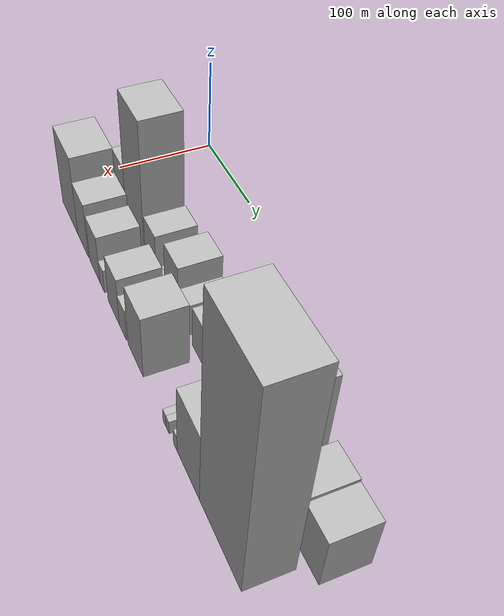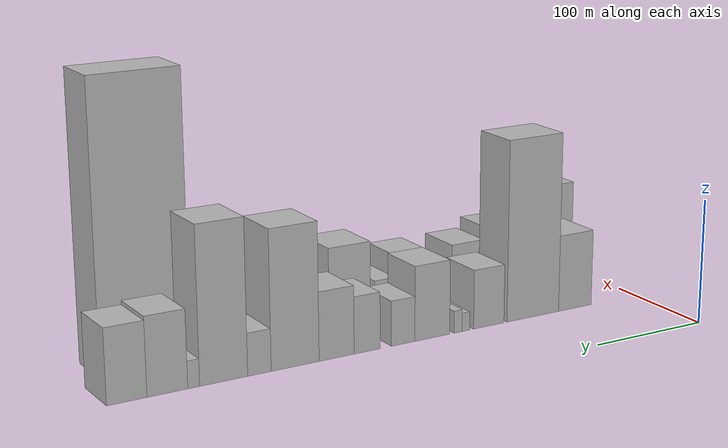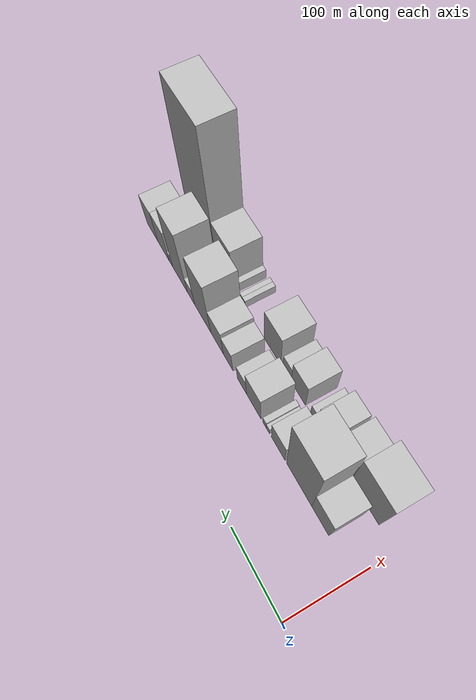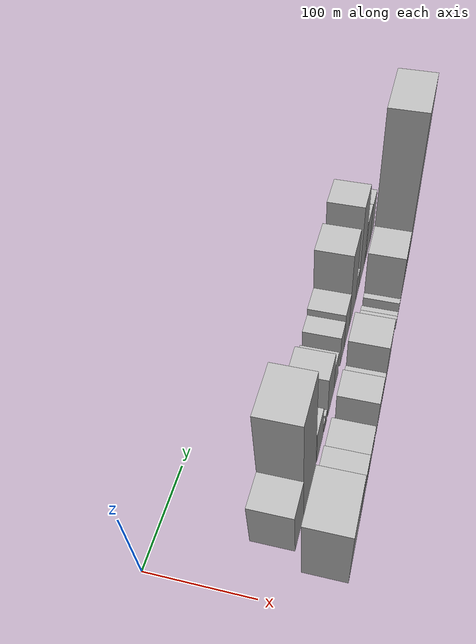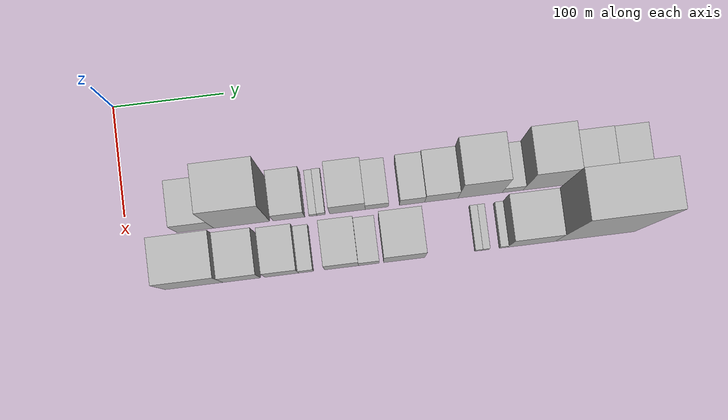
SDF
<sdf version="1.6">
 <world name="default">
  <model name="building_15">
   <static>1</static>
   <pose>100.0000 61.6546 0 0.000000 0.000000 0.000000</pose>
   <link name="link">
    <pose>0 0 31.50 0 0 0</pose>
    <collision name="collision"><geometry><box><size>40.0000 32.7342 63.0000</size></box></geometry></collision>
    <visual name="visual">
     <cast_shadows>0</cast_shadows>
     <geometry><box><size>40.0000 32.7342 63.0000</size></box></geometry>
     <material>
      <script>
       <uri>model://HANNAS_wall/materials/scripts</uri>
       <uri>model://HANNAS_wall/materials/textures</uri>
       <name>vrc/HANNAS_wall</name>
      </script>
     </material>
    </visual>
   </link>
  </model>
  <model name="building_16">
   <static>1</static>
   <pose>100.0000 103.1810 0 0.000000 0.000000 0.000000</pose>
   <link name="link">
    <pose>0 0 73.50 0 0 0</pose>
    <collision name="collision"><geometry><box><size>40.0000 50.3187 147.0000</size></box></geometry></collision>
    <visual name="visual">
     <cast_shadows>0</cast_shadows>
     <geometry><box><size>40.0000 50.3187 147.0000</size></box></geometry>
     <material>
      <script>
       <uri>model://HANNAS_wall/materials/scripts</uri>
       <uri>model://HANNAS_wall/materials/textures</uri>
       <name>vrc/HANNAS_wall</name>
      </script>
     </material>
    </visual>
   </link>
  </model>
  <model name="building_17">
   <static>1</static>
   <pose>100.0000 145.6034 0 0.000000 0.000000 0.000000</pose>
   <link name="link">
    <pose>0 0 24.00 0 0 0</pose>
    <collision name="collision"><geometry><box><size>40.0000 28.5263 48.0000</size></box></geometry></collision>
    <visual name="visual">
     <cast_shadows>0</cast_shadows>
     <geometry><box><size>40.0000 28.5263 48.0000</size></box></geometry>
     <material>
      <script>
       <uri>model://HANNAS_wall/materials/scripts</uri>
       <uri>model://HANNAS_wall/materials/textures</uri>
       <name>vrc/HANNAS_wall</name>
      </script>
     </material>
    </visual>
   </link>
  </model>
  <model name="building_18">
   <static>1</static>
   <pose>100.0000 167.2527 0 0.000000 0.000000 0.000000</pose>
   <link name="link">
    <pose>0 0 7.50 0 0 0</pose>
    <collision name="collision"><geometry><box><size>40.0000 6.7721 15.0000</size></box></geometry></collision>
    <visual name="visual">
     <cast_shadows>0</cast_shadows>
     <geometry><box><size>40.0000 6.7721 15.0000</size></box></geometry>
     <material>
      <script>
       <uri>model://HANNAS_wall/materials/scripts</uri>
       <uri>model://HANNAS_wall/materials/textures</uri>
       <name>vrc/HANNAS_wall</name>
      </script>
     </material>
    </visual>
   </link>
  </model>
  <model name="building_19">
   <static>1</static>
   <pose>100.0000 174.4113 0 0.000000 0.000000 0.000000</pose>
   <link name="link">
    <pose>0 0 9.00 0 0 0</pose>
    <collision name="collision"><geometry><box><size>40.0000 7.5451 18.0000</size></box></geometry></collision>
    <visual name="visual">
     <cast_shadows>0</cast_shadows>
     <geometry><box><size>40.0000 7.5451 18.0000</size></box></geometry>
     <material>
      <script>
       <uri>model://HANNAS_wall/materials/scripts</uri>
       <uri>model://HANNAS_wall/materials/textures</uri>
       <name>vrc/HANNAS_wall</name>
      </script>
     </material>
    </visual>
   </link>
  </model>
  <model name="building_20">
   <static>1</static>
   <pose>100.0000 198.0526 0 0.000000 0.000000 0.000000</pose>
   <link name="link">
    <pose>0 0 30.00 0 0 0</pose>
    <collision name="collision"><geometry><box><size>40.0000 31.7376 60.0000</size></box></geometry></collision>
    <visual name="visual">
     <cast_shadows>0</cast_shadows>
     <geometry><box><size>40.0000 31.7376 60.0000</size></box></geometry>
     <material>
      <script>
       <uri>model://HANNAS_wall/materials/scripts</uri>
       <uri>model://HANNAS_wall/materials/textures</uri>
       <name>vrc/HANNAS_wall</name>
      </script>
     </material>
    </visual>
   </link>
  </model>
  <model name="building_21">
   <static>1</static>
   <pose>100.0000 224.3703 0 0.000000 0.000000 0.000000</pose>
   <link name="link">
    <pose>0 0 18.00 0 0 0</pose>
    <collision name="collision"><geometry><box><size>40.0000 20.8978 36.0000</size></box></geometry></collision>
    <visual name="visual">
     <cast_shadows>0</cast_shadows>
     <geometry><box><size>40.0000 20.8978 36.0000</size></box></geometry>
     <material>
      <script>
       <uri>model://HANNAS_wall/materials/scripts</uri>
       <uri>model://HANNAS_wall/materials/textures</uri>
       <name>vrc/HANNAS_wall</name>
      </script>
     </material>
    </visual>
   </link>
  </model>
  <model name="building_22">
   <static>1</static>
   <pose>100.0000 256.1415 0 0.000000 0.000000 0.000000</pose>
   <link name="link">
    <pose>0 0 22.50 0 0 0</pose>
    <collision name="collision"><geometry><box><size>40.0000 22.6446 45.0000</size></box></geometry></collision>
    <visual name="visual">
     <cast_shadows>0</cast_shadows>
     <geometry><box><size>40.0000 22.6446 45.0000</size></box></geometry>
     <material>
      <script>
       <uri>model://HANNAS_wall/materials/scripts</uri>
       <uri>model://HANNAS_wall/materials/textures</uri>
       <name>vrc/HANNAS_wall</name>
      </script>
     </material>
    </visual>
   </link>
  </model>
  <model name="building_23">
   <static>1</static>
   <pose>100.0000 282.3824 0 0.000000 0.000000 0.000000</pose>
   <link name="link">
    <pose>0 0 27.00 0 0 0</pose>
    <collision name="collision"><geometry><box><size>40.0000 29.8373 54.0000</size></box></geometry></collision>
    <visual name="visual">
     <cast_shadows>0</cast_shadows>
     <geometry><box><size>40.0000 29.8373 54.0000</size></box></geometry>
     <material>
      <script>
       <uri>model://HANNAS_wall/materials/scripts</uri>
       <uri>model://HANNAS_wall/materials/textures</uri>
       <name>vrc/HANNAS_wall</name>
      </script>
     </material>
    </visual>
   </link>
  </model>
  <model name="building_24">
   <static>1</static>
   <pose>100.0000 317.1750 0 0.000000 0.000000 0.000000</pose>
   <link name="link">
    <pose>0 0 54.00 0 0 0</pose>
    <collision name="collision"><geometry><box><size>40.0000 39.7479 108.0000</size></box></geometry></collision>
    <visual name="visual">
     <cast_shadows>0</cast_shadows>
     <geometry><box><size>40.0000 39.7479 108.0000</size></box></geometry>
     <material>
      <script>
       <uri>model://HANNAS_wall/materials/scripts</uri>
       <uri>model://HANNAS_wall/materials/textures</uri>
       <name>vrc/HANNAS_wall</name>
      </script>
     </material>
    </visual>
   </link>
  </model>
  <model name="building_25">
   <static>1</static>
   <pose>100.0000 346.6043 0 0.000000 0.000000 0.000000</pose>
   <link name="link">
    <pose>0 0 16.50 0 0 0</pose>
    <collision name="collision"><geometry><box><size>40.0000 19.1107 33.0000</size></box></geometry></collision>
    <visual name="visual">
     <cast_shadows>0</cast_shadows>
     <geometry><box><size>40.0000 19.1107 33.0000</size></box></geometry>
     <material>
      <script>
       <uri>model://HANNAS_wall/materials/scripts</uri>
       <uri>model://HANNAS_wall/materials/textures</uri>
       <name>vrc/HANNAS_wall</name>
      </script>
     </material>
    </visual>
   </link>
  </model>
  <model name="building_26">
   <static>1</static>
   <pose>100.0000 375.1776 0 0.000000 0.000000 0.000000</pose>
   <link name="link">
    <pose>0 0 60.00 0 0 0</pose>
    <collision name="collision"><geometry><box><size>40.0000 38.0360 120.0000</size></box></geometry></collision>
    <visual name="visual">
     <cast_shadows>0</cast_shadows>
     <geometry><box><size>40.0000 38.0360 120.0000</size></box></geometry>
     <material>
      <script>
       <uri>model://HANNAS_wall/materials/scripts</uri>
       <uri>model://HANNAS_wall/materials/textures</uri>
       <name>vrc/HANNAS_wall</name>
      </script>
     </material>
    </visual>
   </link>
  </model>
  <model name="building_27">
   <static>1</static>
   <pose>100.0000 398.8206 0 0.000000 0.000000 0.000000</pose>
   <link name="link">
    <pose>0 0 10.50 0 0 0</pose>
    <collision name="collision"><geometry><box><size>40.0000 9.2500 21.0000</size></box></geometry></collision>
    <visual name="visual">
     <cast_shadows>0</cast_shadows>
     <geometry><box><size>40.0000 9.2500 21.0000</size></box></geometry>
     <material>
      <script>
       <uri>model://HANNAS_wall/materials/scripts</uri>
       <uri>model://HANNAS_wall/materials/textures</uri>
       <name>vrc/HANNAS_wall</name>
      </script>
     </material>
    </visual>
   </link>
  </model>
  <model name="building_28">
   <static>1</static>
   <pose>100.0000 419.0228 0 0.000000 0.000000 0.000000</pose>
   <link name="link">
    <pose>0 0 30.00 0 0 0</pose>
    <collision name="collision"><geometry><box><size>40.0000 31.1543 60.0000</size></box></geometry></collision>
    <visual name="visual">
     <cast_shadows>0</cast_shadows>
     <geometry><box><size>40.0000 31.1543 60.0000</size></box></geometry>
     <material>
      <script>
       <uri>model://HANNAS_wall/materials/scripts</uri>
       <uri>model://HANNAS_wall/materials/textures</uri>
       <name>vrc/HANNAS_wall</name>
      </script>
     </material>
    </visual>
   </link>
  </model>
  <model name="building_29">
   <static>1</static>
   <pose>100.0000 449.6907 0 0.000000 0.000000 0.000000</pose>
   <link name="link">
    <pose>0 0 28.50 0 0 0</pose>
    <collision name="collision"><geometry><box><size>40.0000 30.1815 57.0000</size></box></geometry></collision>
    <visual name="visual">
     <cast_shadows>0</cast_shadows>
     <geometry><box><size>40.0000 30.1815 57.0000</size></box></geometry>
     <material>
      <script>
       <uri>model://HANNAS_wall/materials/scripts</uri>
       <uri>model://HANNAS_wall/materials/textures</uri>
       <name>vrc/HANNAS_wall</name>
      </script>
     </material>
    </visual>
   </link>
  </model>
  <model name="building_40">
   <static>1</static>
   <pose>149.0000 55.1138 0 0.000000 0.000000 0.000000</pose>
   <link name="link">
    <pose>0 0 45.00 0 0 0</pose>
    <collision name="collision"><geometry><box><size>40.0000 51.8248 90.0000</size></box></geometry></collision>
    <visual name="visual">
     <cast_shadows>0</cast_shadows>
     <geometry><box><size>40.0000 51.8248 90.0000</size></box></geometry>
     <material>
      <script>
       <uri>model://HANNAS_wall/materials/scripts</uri>
       <uri>model://HANNAS_wall/materials/textures</uri>
       <name>vrc/HANNAS_wall</name>
      </script>
     </material>
    </visual>
   </link>
  </model>
  <model name="building_41">
   <static>1</static>
   <pose>149.0000 97.7562 0 0.000000 0.000000 0.000000</pose>
   <link name="link">
    <pose>0 0 31.50 0 0 0</pose>
    <collision name="collision"><geometry><box><size>40.0000 33.4600 63.0000</size></box></geometry></collision>
    <visual name="visual">
     <cast_shadows>0</cast_shadows>
     <geometry><box><size>40.0000 33.4600 63.0000</size></box></geometry>
     <material>
      <script>
       <uri>model://HANNAS_wall/materials/scripts</uri>
       <uri>model://HANNAS_wall/materials/textures</uri>
       <name>vrc/HANNAS_wall</name>
      </script>
     </material>
    </visual>
   </link>
  </model>
  <model name="building_42">
   <static>1</static>
   <pose>149.0000 133.5364 0 0.000000 0.000000 0.000000</pose>
   <link name="link">
    <pose>0 0 27.00 0 0 0</pose>
    <collision name="collision"><geometry><box><size>40.0000 30.1005 54.0000</size></box></geometry></collision>
    <visual name="visual">
     <cast_shadows>0</cast_shadows>
     <geometry><box><size>40.0000 30.1005 54.0000</size></box></geometry>
     <material>
      <script>
       <uri>model://HANNAS_wall/materials/scripts</uri>
       <uri>model://HANNAS_wall/materials/textures</uri>
       <name>vrc/HANNAS_wall</name>
      </script>
     </material>
    </visual>
   </link>
  </model>
  <model name="building_43">
   <static>1</static>
   <pose>149.0000 155.2180 0 0.000000 0.000000 0.000000</pose>
   <link name="link">
    <pose>0 0 13.50 0 0 0</pose>
    <collision name="collision"><geometry><box><size>40.0000 13.2626 27.0000</size></box></geometry></collision>
    <visual name="visual">
     <cast_shadows>0</cast_shadows>
     <geometry><box><size>40.0000 13.2626 27.0000</size></box></geometry>
     <material>
      <script>
       <uri>model://HANNAS_wall/materials/scripts</uri>
       <uri>model://HANNAS_wall/materials/textures</uri>
       <name>vrc/HANNAS_wall</name>
      </script>
     </material>
    </visual>
   </link>
  </model>
  <model name="building_44">
   <static>1</static>
   <pose>149.0000 186.9464 0 0.000000 0.000000 0.000000</pose>
   <link name="link">
    <pose>0 0 27.00 0 0 0</pose>
    <collision name="collision"><geometry><box><size>40.0000 30.1942 54.0000</size></box></geometry></collision>
    <visual name="visual">
     <cast_shadows>0</cast_shadows>
     <geometry><box><size>40.0000 30.1942 54.0000</size></box></geometry>
     <material>
      <script>
       <uri>model://HANNAS_wall/materials/scripts</uri>
       <uri>model://HANNAS_wall/materials/textures</uri>
       <name>vrc/HANNAS_wall</name>
      </script>
     </material>
    </visual>
   </link>
  </model>
  <model name="building_45">
   <static>1</static>
   <pose>149.0000 211.2514 0 0.000000 0.000000 0.000000</pose>
   <link name="link">
    <pose>0 0 18.00 0 0 0</pose>
    <collision name="collision"><geometry><box><size>40.0000 18.4159 36.0000</size></box></geometry></collision>
    <visual name="visual">
     <cast_shadows>0</cast_shadows>
     <geometry><box><size>40.0000 18.4159 36.0000</size></box></geometry>
     <material>
      <script>
       <uri>model://HANNAS_wall/materials/scripts</uri>
       <uri>model://HANNAS_wall/materials/textures</uri>
       <name>vrc/HANNAS_wall</name>
      </script>
     </material>
    </visual>
   </link>
  </model>
  <model name="building_46">
   <static>1</static>
   <pose>149.0000 242.9325 0 0.000000 0.000000 0.000000</pose>
   <link name="link">
    <pose>0 0 34.50 0 0 0</pose>
    <collision name="collision"><geometry><box><size>40.0000 36.9463 69.0000</size></box></geometry></collision>
    <visual name="visual">
     <cast_shadows>0</cast_shadows>
     <geometry><box><size>40.0000 36.9463 69.0000</size></box></geometry>
     <material>
      <script>
       <uri>model://HANNAS_wall/materials/scripts</uri>
       <uri>model://HANNAS_wall/materials/textures</uri>
       <name>vrc/HANNAS_wall</name>
      </script>
     </material>
    </visual>
   </link>
  </model>
  <model name="building_47">
   <static>1</static>
   <pose>149.0000 309.3114 0 0.000000 0.000000 0.000000</pose>
   <link name="link">
    <pose>0 0 7.50 0 0 0</pose>
    <collision name="collision"><geometry><box><size>40.0000 6.6039 15.0000</size></box></geometry></collision>
    <visual name="visual">
     <cast_shadows>0</cast_shadows>
     <geometry><box><size>40.0000 6.6039 15.0000</size></box></geometry>
     <material>
      <script>
       <uri>model://HANNAS_wall/materials/scripts</uri>
       <uri>model://HANNAS_wall/materials/textures</uri>
       <name>vrc/HANNAS_wall</name>
      </script>
     </material>
    </visual>
   </link>
  </model>
  <model name="building_48">
   <static>1</static>
   <pose>149.0000 315.8368 0 0.000000 0.000000 0.000000</pose>
   <link name="link">
    <pose>0 0 7.50 0 0 0</pose>
    <collision name="collision"><geometry><box><size>40.0000 6.4470 15.0000</size></box></geometry></collision>
    <visual name="visual">
     <cast_shadows>0</cast_shadows>
     <geometry><box><size>40.0000 6.4470 15.0000</size></box></geometry>
     <material>
      <script>
       <uri>model://HANNAS_wall/materials/scripts</uri>
       <uri>model://HANNAS_wall/materials/textures</uri>
       <name>vrc/HANNAS_wall</name>
      </script>
     </material>
    </visual>
   </link>
  </model>
  <model name="building_49">
   <static>1</static>
   <pose>149.0000 331.7492 0 0.000000 0.000000 0.000000</pose>
   <link name="link">
    <pose>0 0 9.00 0 0 0</pose>
    <collision name="collision"><geometry><box><size>40.0000 7.3778 18.0000</size></box></geometry></collision>
    <visual name="visual">
     <cast_shadows>0</cast_shadows>
     <geometry><box><size>40.0000 7.3778 18.0000</size></box></geometry>
     <material>
      <script>
       <uri>model://HANNAS_wall/materials/scripts</uri>
       <uri>model://HANNAS_wall/materials/textures</uri>
       <name>vrc/HANNAS_wall</name>
      </script>
     </material>
    </visual>
   </link>
  </model>
  <model name="building_50">
   <static>1</static>
   <pose>149.0000 356.9180 0 0.000000 0.000000 0.000000</pose>
   <link name="link">
    <pose>0 0 39.00 0 0 0</pose>
    <collision name="collision"><geometry><box><size>40.0000 42.9598 78.0000</size></box></geometry></collision>
    <visual name="visual">
     <cast_shadows>0</cast_shadows>
     <geometry><box><size>40.0000 42.9598 78.0000</size></box></geometry>
     <material>
      <script>
       <uri>model://HANNAS_wall/materials/scripts</uri>
       <uri>model://HANNAS_wall/materials/textures</uri>
       <name>vrc/HANNAS_wall</name>
      </script>
     </material>
    </visual>
   </link>
  </model>
  <model name="building_51">
   <static>1</static>
   <pose>149.0000 414.0786 0 0.000000 0.000000 0.000000</pose>
   <link name="link">
    <pose>0 0 111.00 0 0 0</pose>
    <collision name="collision"><geometry><box><size>40.0000 71.3614 222.0000</size></box></geometry></collision>
    <visual name="visual">
     <cast_shadows>0</cast_shadows>
     <geometry><box><size>40.0000 71.3614 222.0000</size></box></geometry>
     <material>
      <script>
       <uri>model://HANNAS_wall/materials/scripts</uri>
       <uri>model://HANNAS_wall/materials/textures</uri>
       <name>vrc/HANNAS_wall</name>
      </script>
     </material>
    </visual>
   </link>
  </model>
 </world>
</sdf>
